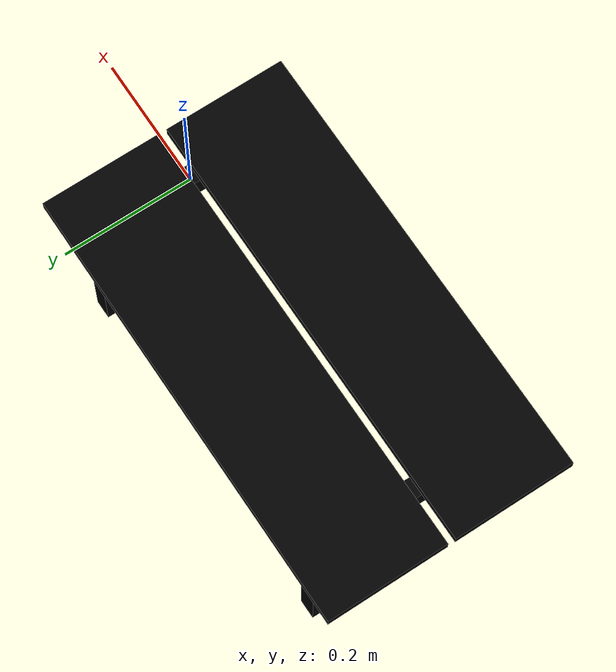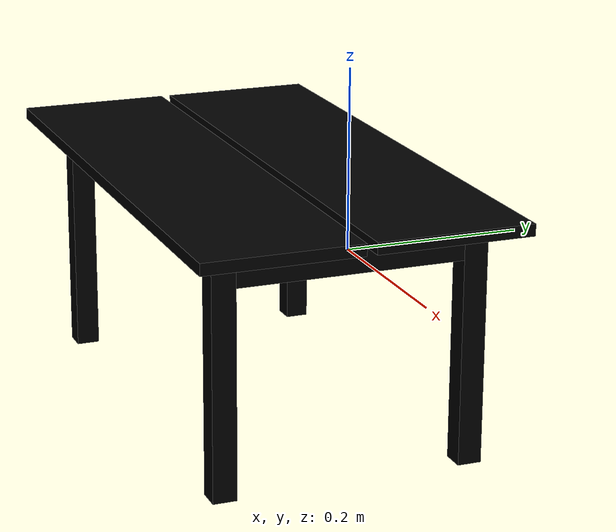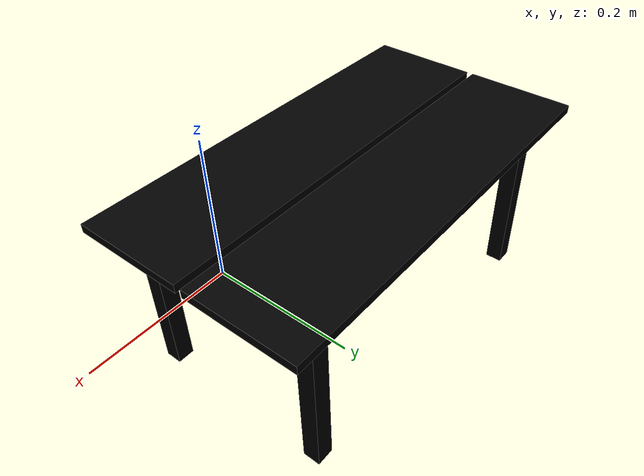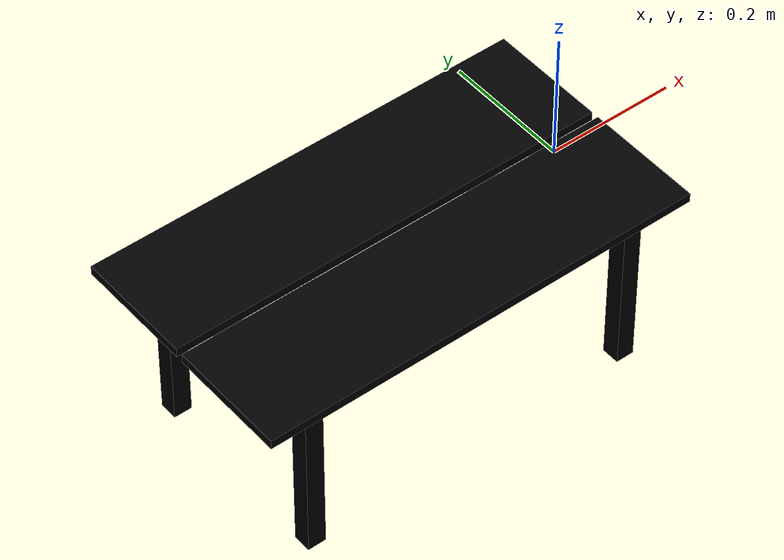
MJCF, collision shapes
<mujoco model="table_liden_0919">
    <custom>
        <numeric data="-0.375211 0.016449 0.023536 0.04548 0.0 0.0 0.998965" name="0_part0_initpos"/>
        <numeric data="0.044406 0.108081 0.025892 -7e-06 -0.999947 0.010278 0.0" name="7_part7_initpos"/>
        <numeric data="0.041843 -0.118284 0.025892 9e-06 -0.999961 0.008831 0.0" name="6_part6_initpos"/>
        <numeric data="0.227318 0.268369 0.014213 0.486318 -0.486318 -0.513317 0.513317" name="5_part5_initpos"/>
        <numeric data="-0.127298 0.385418 0.014109 0.5 0.5 -0.5 -0.5" name="4_part4_initpos"/>
        <numeric data="0.24812 0.379448 0.014109 0.5 0.5 -0.5 -0.5" name="3_part3_initpos"/>
        <numeric data="-0.119076 0.281912 0.014109 0.5 -0.5 -0.5 0.5" name="2_part2_initpos"/>
        <numeric data="0.486105 0.018474 0.023639 0.99994 -0.0 0.0 0.010916" name="1_part1_initpos"/>
    </custom>
    <asset>
        <mesh file="table_liden_0919/0.stl" name="part0" scale="0.000371112 0.000371112 0.000371112"/>
        <mesh file="table_liden_0919/7.stl" name="part7" scale="0.000371112 0.000371112 0.000371112"/>
        <mesh file="table_liden_0919/6.stl" name="part6" scale="0.000371112 0.000371112 0.000371112"/>
        <mesh file="table_liden_0919/5.stl" name="part5" scale="0.000371112 0.000371112 0.000371112"/>
        <mesh file="table_liden_0919/4.stl" name="part4" scale="0.000371112 0.000371112 0.000371112"/>
        <mesh file="table_liden_0919/3.stl" name="part3" scale="0.000371112 0.000371112 0.000371112"/>
        <mesh file="table_liden_0919/2.stl" name="part2" scale="0.000371112 0.000371112 0.000371112"/>
        <mesh file="table_liden_0919/1.stl" name="part1" scale="0.000371112 0.000371112 0.000371112"/>
    </asset>
    <equality>
        <weld active="false" body1="0_part0" body2="6_part6" solimp="1 1 0.5" solref="0.01 0.3"/>
        <weld active="false" body1="0_part0" body2="7_part7" solimp="1 1 0.5" solref="0.01 0.3"/>
        <weld active="false" body1="1_part1" body2="6_part6" solimp="1 1 0.5" solref="0.01 0.3"/>
        <weld active="false" body1="1_part1" body2="7_part7" solimp="1 1 0.5" solref="0.01 0.3"/>
        <weld active="false" body1="0_part0" body2="2_part2" solimp="1 1 0.5" solref="0.01 0.3"/>
        <weld active="false" body1="0_part0" body2="5_part5" solimp="1 1 0.5" solref="0.01 0.3"/>
        <weld active="false" body1="0_part0" body2="4_part4" solimp="1 1 0.5" solref="0.01 0.3"/>
        <weld active="false" body1="0_part0" body2="3_part3" solimp="1 1 0.5" solref="0.01 0.3"/>
        <weld active="false" body1="1_part1" body2="2_part2" solimp="1 1 0.5" solref="0.01 0.3"/>
        <weld active="false" body1="1_part1" body2="5_part5" solimp="1 1 0.5" solref="0.01 0.3"/>
        <weld active="false" body1="1_part1" body2="4_part4" solimp="1 1 0.5" solref="0.01 0.3"/>
        <weld active="false" body1="1_part1" body2="3_part3" solimp="1 1 0.5" solref="0.01 0.3"/>
    </equality>
    <worldbody>
        <body name="0_part0" pos="2.226672e-10 -0.0 -1.4844479999999999e-10" quat="1 0 0 0">
            <geom conaffinity="0" contype="0" density="0" mesh="part0" name="0_part0_mesh" pos="0.0 0.0 0.0"
                  rgba="0.82 0.71 0.55 1" type="mesh"/>
            <site name="0_part0_horizontal_radius_site" pos="2.226672e-10 -0.0 -1.4844479999999999e-10" quat="1 0 0 0"
                  rgba="0 0 0 0" size="0.007422239999999998"/>
            <site name="0_part0_top_site" pos="2.226672e-10 0.0 0.023565616230676798" quat="1 0 0 0" rgba="0 0 0 0"
                  size="0.007422239999999998"/>
            <site name="0_part0_bottom_site" pos="2.226672e-10 0.0 -0.023565616527566398" quat="1 0 0 0" rgba="0 0 0 0"
                  size="0.007422239999999998"/>
            <site name="0_part0_corner_site8" pos="-0.014139381747590397 0.1333477755377712 0.023565616230676798"
                  quat="1 0 0 0" rgba="0 0 0 0" size="0.007422239999999998"/>
            <site name="0_part0_corner_site7" pos="0.014139382192924798 0.1333477755377712 0.023565616230676798"
                  quat="1 0 0 0" rgba="0 0 0 0" size="0.007422239999999998"/>
            <site name="0_part0_corner_site6" pos="0.014139382192924798 -0.1333477755377712 0.023565616230676798"
                  quat="1 0 0 0" rgba="0 0 0 0" size="0.007422239999999998"/>
            <site name="0_part0_corner_site5" pos="-0.014139381747590397 -0.1333477755377712 0.023565616230676798"
                  quat="1 0 0 0" rgba="0 0 0 0" size="0.007422239999999998"/>
            <site name="0_part0_corner_site4" pos="-0.014139381747590397 0.1333477755377712 -0.023565616527566398"
                  quat="1 0 0 0" rgba="0 0 0 0" size="0.007422239999999998"/>
            <site name="0_part0_corner_site3" pos="0.014139382192924798 0.1333477755377712 -0.023565616527566398"
                  quat="1 0 0 0" rgba="0 0 0 0" size="0.007422239999999998"/>
            <site name="0_part0_corner_site2" pos="0.014139382192924798 -0.1333477755377712 -0.023565616527566398"
                  quat="1 0 0 0" rgba="0 0 0 0" size="0.007422239999999998"/>
            <site name="0_part0_corner_site1" pos="-0.014139381747590397 -0.1333477755377712 -0.023565616527566398"
                  quat="1 0 0 0" rgba="0 0 0 0" size="0.007422239999999998"/>
            <site name="centerbar-toppanel,0,180,conn_site2" pos="0.0 -0.0498351089208 0.015289814399999999"
                  quat="1 0 0 0" rgba="0.9019 0.0980 0.2941 0.3" size="0.007422239999999998"/>
            <site name="centerbar-toppanel,0,180,conn_site1" pos="0.0 0.04884527899439999 0.015289814399999999"
                  quat="1 0 0 0" rgba="0.9019 0.0980 0.2941 0.3" size="0.007422239999999998"/>
            <site name="centerbar-leg,0,180,conn_site4" pos="-7.422239999999998e-09 -0.13360032 -0.004082232"
                  quat="0.7071067 0.7071068 0 0" rgba="0.2352 0.7058 0.2941 0.3" size="0.007422239999999998"/>
            <site name="centerbar-leg,0,180,conn_site3" pos="-7.422239999999998e-09 0.13360032 -0.004824456"
                  quat="0.7071067 -0.7071068 0 0" rgba="0.2352 0.7058 0.2941 0.3" size="0.007422239999999998"/>
            <geom density="50" name="noviz_collision_0_part0_0" pos="-1.4844479999999996e-08 0.0 -0.004352056401839999"
                  quat="1 0 0 0" rgba="0 0 0 0" size="0.014139367199999997 0.133347778284 0.01921355930928"
                  solref="0.001 1" type="box"/>
        </body>
        <body name="7_part7" pos="-0.279928666222884 -0.099670247716116 0.0023565566724335994" quat="1 0 0 0">
            <geom conaffinity="0" contype="0" density="0" mesh="part7" name="7_part7_mesh" pos="0.0 0.0 0.0"
                  rgba="0.82 0.71 0.55 1" type="mesh"/>
            <site name="7_part7_horizontal_radius_site" pos="0.0 0.0 0.0" quat="1 0 0 0" rgba="0 0 0 0"
                  size="0.007422239999999998"/>
            <site name="7_part7_top_site" pos="0.0 0.0 0.025922164144867192" quat="1 0 0 0" rgba="0 0 0 0"
                  size="0.007422239999999998"/>
            <site name="7_part7_bottom_site" pos="0.0 0.0 -0.025922164144867192" quat="1 0 0 0" rgba="0 0 0 0"
                  size="0.007422239999999998"/>
            <site name="7_part7_corner_site8" pos="-0.34180971317149433 0.09250134216445918 0.025922164144867192"
                  quat="1 0 0 0" rgba="0 0 0 0" size="0.007422239999999998"/>
            <site name="7_part7_corner_site7" pos="0.34180971317149433 0.09250134216445918 0.025922164144867192"
                  quat="1 0 0 0" rgba="0 0 0 0" size="0.007422239999999998"/>
            <site name="7_part7_corner_site6" pos="0.34180971317149433 -0.09250134216445918 0.025922164144867192"
                  quat="1 0 0 0" rgba="0 0 0 0" size="0.007422239999999998"/>
            <site name="7_part7_corner_site5" pos="-0.34180971317149433 -0.09250134216445918 0.025922164144867192"
                  quat="1 0 0 0" rgba="0 0 0 0" size="0.007422239999999998"/>
            <site name="7_part7_corner_site4" pos="-0.34180971317149433 0.09250134216445918 -0.025922164144867192"
                  quat="1 0 0 0" rgba="0 0 0 0" size="0.007422239999999998"/>
            <site name="7_part7_corner_site3" pos="0.34180971317149433 0.09250134216445918 -0.025922164144867192"
                  quat="1 0 0 0" rgba="0 0 0 0" size="0.007422239999999998"/>
            <site name="7_part7_corner_site2" pos="0.34180971317149433 -0.09250134216445918 -0.025922164144867192"
                  quat="1 0 0 0" rgba="0 0 0 0" size="0.007422239999999998"/>
            <site name="7_part7_corner_site1" pos="-0.34180971317149433 -0.09250134216445918 -0.025922164144867192"
                  quat="1 0 0 0" rgba="0 0 0 0" size="0.007422239999999998"/>
            <site name="toppanel-centerbar,0,conn_site3" pos="-0.2548437237359999 0.0498351089208 0.012933256911119998"
                  quat="1 0 0 0" rgba="0.9019 0.0980 0.2941 0.3" size="0.007422239999999998"/>
            <site name="toppanel-centerbar,0,conn_site2" pos="0.2799286682639999 0.0498351089208 0.012933256911119998"
                  quat="1 0 0 0" rgba="0.9019 0.0980 0.2941 0.3" size="0.007422239999999998"/>
            <geom density="50" name="noviz_collision_7_part7_0"
                  pos="0.00356577027408 -0.0005299961805599999 0.018871048911119993" quat="1 0 0 0" rgba="0 0 0 0"
                  size="0.34537545702239997 0.09277799999999999 0.0070511279999999985" solref="0.001 1" type="box"/>
            <geom density="50" name="noviz_collision_7_part7_"
                  pos="0.014212476263999997 -0.019456708180559997 -0.007181013488879997" quat="1 0 0 0" rgba="0 0 0 0"
                  size="0.24957281999999997 0.014287811999999999 0.0185556" solref="0.001 1" type="box"/>
        </body>
        <body name="6_part6" pos="-0.279928666222884 0.0976905749486184 0.0023565566724335994" quat="1 0 0 0">
            <geom conaffinity="0" contype="0" density="0" mesh="part6" name="6_part6_mesh" pos="0.0 0.0 0.0"
                  rgba="0.82 0.71 0.55 1" type="mesh"/>
            <site name="6_part6_horizontal_radius_site" pos="0.0 0.0 0.0" quat="1 0 0 0" rgba="0 0 0 0"
                  size="0.007422239999999998"/>
            <site name="6_part6_top_site" pos="0.0 0.0 0.025922164144867192" quat="1 0 0 0" rgba="0 0 0 0"
                  size="0.007422239999999998"/>
            <site name="6_part6_bottom_site" pos="0.0 0.0 -0.025922164144867192" quat="1 0 0 0" rgba="0 0 0 0"
                  size="0.007422239999999998"/>
            <site name="6_part6_corner_site8" pos="-0.34180971317149433 0.09250134216445918 0.025922164144867192"
                  quat="1 0 0 0" rgba="0 0 0 0" size="0.007422239999999998"/>
            <site name="6_part6_corner_site7" pos="0.34180971317149433 0.09250134216445918 0.025922164144867192"
                  quat="1 0 0 0" rgba="0 0 0 0" size="0.007422239999999998"/>
            <site name="6_part6_corner_site6" pos="0.34180971317149433 -0.09250134216445918 0.025922164144867192"
                  quat="1 0 0 0" rgba="0 0 0 0" size="0.007422239999999998"/>
            <site name="6_part6_corner_site5" pos="-0.34180971317149433 -0.09250134216445918 0.025922164144867192"
                  quat="1 0 0 0" rgba="0 0 0 0" size="0.007422239999999998"/>
            <site name="6_part6_corner_site4" pos="-0.34180971317149433 0.09250134216445918 -0.025922164144867192"
                  quat="1 0 0 0" rgba="0 0 0 0" size="0.007422239999999998"/>
            <site name="6_part6_corner_site3" pos="0.34180971317149433 0.09250134216445918 -0.025922164144867192"
                  quat="1 0 0 0" rgba="0 0 0 0" size="0.007422239999999998"/>
            <site name="6_part6_corner_site2" pos="0.34180971317149433 -0.09250134216445918 -0.025922164144867192"
                  quat="1 0 0 0" rgba="0 0 0 0" size="0.007422239999999998"/>
            <site name="6_part6_corner_site1" pos="-0.34180971317149433 -0.09250134216445918 -0.025922164144867192"
                  quat="1 0 0 0" rgba="0 0 0 0" size="0.007422239999999998"/>
            <site name="toppanel-centerbar,0,conn_site4"
                  pos="-0.2548437237359999 -0.04884527899439999 0.012933256911119998" quat="1 0 0 0"
                  rgba="0.9019 0.0980 0.2941 0.3" size="0.007422239999999998"/>
            <site name="toppanel-centerbar,0,conn_site1"
                  pos="0.2799286682639999 -0.04884527899439999 0.012933256911119998" quat="1 0 0 0"
                  rgba="0.9019 0.0980 0.2941 0.3" size="0.007422239999999998"/>
            <geom density="50" name="noviz_collision_6_part6_0"
                  pos="0.003630165628319999 -0.00045923625552000003 0.018871048911119993" quat="1 0 0 0" rgba="0 0 0 0"
                  size="0.34543984495439994 0.09278738913359999 0.0070511279999999985" solref="0.001 1" type="box"/>
            <geom density="50" name="noviz_collision_6_part6_1"
                  pos="0.014212476263999997 0.021584816544479996 -0.007181013488879997" quat="1 0 0 0" rgba="0 0 0 0"
                  size="0.24957281999999997 0.014287811999999999 0.0185556" solref="0.001 1" type="box"/>
        </body>
        <body name="5_part5" pos="-1.4547590399999999e-08 0.14748714273777117 -0.12725430932756637" quat="1 0 0 0">
            <geom conaffinity="0" contype="0" density="0" mesh="part5" name="5_part5_mesh" pos="0.0 0.0 0.0"
                  rgba="0.82 0.71 0.55 1" type="mesh"/>
            <site name="5_part5_horizontal_radius_site" pos="-0.0 0.0 0.0" quat="1 0 0 0" rgba="0 0 0 0"
                  size="0.007422239999999998"/>
            <site name="5_part5_top_site" pos="0.0 0.0 0.14139367199999997" quat="1 0 0 0" rgba="0 0 0 0"
                  size="0.007422239999999998"/>
            <site name="5_part5_bottom_site" pos="0.0 0.0 -0.14139367199999997" quat="1 0 0 0" rgba="0 0 0 0"
                  size="0.007422239999999998"/>
            <site name="5_part5_corner_site8" pos="-0.014139367199999997 0.014139367199999997 0.14139367199999997"
                  quat="1 0 0 0" rgba="0 0 0 0" size="0.007422239999999998"/>
            <site name="5_part5_corner_site7" pos="0.014139367199999997 0.014139367199999997 0.14139367199999997"
                  quat="1 0 0 0" rgba="0 0 0 0" size="0.007422239999999998"/>
            <site name="5_part5_corner_site6" pos="0.014139367199999997 -0.014139367199999997 0.14139367199999997"
                  quat="1 0 0 0" rgba="0 0 0 0" size="0.007422239999999998"/>
            <site name="5_part5_corner_site5" pos="-0.014139367199999997 -0.014139367199999997 0.14139367199999997"
                  quat="1 0 0 0" rgba="0 0 0 0" size="0.007422239999999998"/>
            <site name="5_part5_corner_site4" pos="-0.014139367199999997 0.014139367199999997 -0.14139367199999997"
                  quat="1 0 0 0" rgba="0 0 0 0" size="0.007422239999999998"/>
            <site name="5_part5_corner_site3" pos="0.014139367199999997 0.014139367199999997 -0.14139367199999997"
                  quat="1 0 0 0" rgba="0 0 0 0" size="0.007422239999999998"/>
            <site name="5_part5_corner_site2" pos="0.014139367199999997 -0.014139367199999997 -0.14139367199999997"
                  quat="1 0 0 0" rgba="0 0 0 0" size="0.007422239999999998"/>
            <site name="5_part5_corner_site1" pos="-0.014139367199999997 -0.014139367199999997 -0.14139367199999997"
                  quat="1 0 0 0" rgba="0 0 0 0" size="0.007422239999999998"/>
            <site name="leg-centerbar,0,180,conn_site1"
                  pos="7.422239999999998e-09 -0.01388682177288 0.12242984879999996" quat="0.7071067 -0.7071068 0 0"
                  rgba="0.2352 0.7058 0.2941 0.3" size="0.007422239999999998"/>
            <geom density="50" name="noviz_collision_5_part5_0" pos="0.0 0.0 0.0" quat="1 0 0 0" rgba="0 0 0 0"
                  size="0.014139367199999997 0.014139370911119997 0.14139367199999997" solref="0.001 1" type="box"/>
        </body>
        <body name="4_part4" pos="-1.4547590399999999e-08 -0.14748714273777117 -0.12725430932756637" quat="1 0 0 0">
            <geom conaffinity="0" contype="0" density="0" mesh="part4" name="4_part4_mesh" pos="0.0 0.0 0.0"
                  rgba="0.82 0.71 0.55 1" type="mesh"/>
            <site name="4_part4_horizontal_radius_site" pos="-0.0 0.0 0.0" quat="1 0 0 0" rgba="0 0 0 0"
                  size="0.007422239999999998"/>
            <site name="4_part4_top_site" pos="0.0 0.0 0.14139367199999997" quat="1 0 0 0" rgba="0 0 0 0"
                  size="0.007422239999999998"/>
            <site name="4_part4_bottom_site" pos="0.0 0.0 -0.14139367199999997" quat="1 0 0 0" rgba="0 0 0 0"
                  size="0.007422239999999998"/>
            <site name="4_part4_corner_site8" pos="-0.014139367199999997 0.014139367199999997 0.14139367199999997"
                  quat="1 0 0 0" rgba="0 0 0 0" size="0.007422239999999998"/>
            <site name="4_part4_corner_site7" pos="0.014139367199999997 0.014139367199999997 0.14139367199999997"
                  quat="1 0 0 0" rgba="0 0 0 0" size="0.007422239999999998"/>
            <site name="4_part4_corner_site6" pos="0.014139367199999997 -0.014139367199999997 0.14139367199999997"
                  quat="1 0 0 0" rgba="0 0 0 0" size="0.007422239999999998"/>
            <site name="4_part4_corner_site5" pos="-0.014139367199999997 -0.014139367199999997 0.14139367199999997"
                  quat="1 0 0 0" rgba="0 0 0 0" size="0.007422239999999998"/>
            <site name="4_part4_corner_site4" pos="-0.014139367199999997 0.014139367199999997 -0.14139367199999997"
                  quat="1 0 0 0" rgba="0 0 0 0" size="0.007422239999999998"/>
            <site name="4_part4_corner_site3" pos="0.014139367199999997 0.014139367199999997 -0.14139367199999997"
                  quat="1 0 0 0" rgba="0 0 0 0" size="0.007422239999999998"/>
            <site name="4_part4_corner_site2" pos="0.014139367199999997 -0.014139367199999997 -0.14139367199999997"
                  quat="1 0 0 0" rgba="0 0 0 0" size="0.007422239999999998"/>
            <site name="4_part4_corner_site1" pos="-0.014139367199999997 -0.014139367199999997 -0.14139367199999997"
                  quat="1 0 0 0" rgba="0 0 0 0" size="0.007422239999999998"/>
            <site name="leg-centerbar,0,180,conn_site2" pos="7.422239999999998e-09 0.01388682177288 0.12317207279999998"
                  quat="0.7071067 0.7071068 0 0" rgba="0.2352 0.7058 0.2941 0.3" size="0.007422239999999998"/>
            <geom density="50" name="noviz_collision_4_part4_0" pos="0.0 0.0 0.0" quat="1 0 0 0" rgba="0 0 0 0"
                  size="0.014139367199999997 0.014139370911119997 0.14139367199999997" solref="0.001 1" type="box"/>
        </body>
        <body name="3_part3" pos="-0.5315785328785008 -0.14748714273777117 -0.12725430932756637" quat="1 0 0 0">
            <geom conaffinity="0" contype="0" density="0" mesh="part3" name="3_part3_mesh" pos="0.0 0.0 0.0"
                  rgba="0.82 0.71 0.55 1" type="mesh"/>
            <site name="3_part3_horizontal_radius_site" pos="0.0 0.0 0.0" quat="1 0 0 0" rgba="0 0 0 0"
                  size="0.007422239999999998"/>
            <site name="3_part3_top_site" pos="0.0 0.0 0.14139367199999997" quat="1 0 0 0" rgba="0 0 0 0"
                  size="0.007422239999999998"/>
            <site name="3_part3_bottom_site" pos="0.0 0.0 -0.14139367199999997" quat="1 0 0 0" rgba="0 0 0 0"
                  size="0.007422239999999998"/>
            <site name="3_part3_corner_site8" pos="-0.014139367199999997 0.014139367199999997 0.14139367199999997"
                  quat="1 0 0 0" rgba="0 0 0 0" size="0.007422239999999998"/>
            <site name="3_part3_corner_site7" pos="0.014139367199999997 0.014139367199999997 0.14139367199999997"
                  quat="1 0 0 0" rgba="0 0 0 0" size="0.007422239999999998"/>
            <site name="3_part3_corner_site6" pos="0.014139367199999997 -0.014139367199999997 0.14139367199999997"
                  quat="1 0 0 0" rgba="0 0 0 0" size="0.007422239999999998"/>
            <site name="3_part3_corner_site5" pos="-0.014139367199999997 -0.014139367199999997 0.14139367199999997"
                  quat="1 0 0 0" rgba="0 0 0 0" size="0.007422239999999998"/>
            <site name="3_part3_corner_site4" pos="-0.014139367199999997 0.014139367199999997 -0.14139367199999997"
                  quat="1 0 0 0" rgba="0 0 0 0" size="0.007422239999999998"/>
            <site name="3_part3_corner_site3" pos="0.014139367199999997 0.014139367199999997 -0.14139367199999997"
                  quat="1 0 0 0" rgba="0 0 0 0" size="0.007422239999999998"/>
            <site name="3_part3_corner_site2" pos="0.014139367199999997 -0.014139367199999997 -0.14139367199999997"
                  quat="1 0 0 0" rgba="0 0 0 0" size="0.007422239999999998"/>
            <site name="3_part3_corner_site1" pos="-0.014139367199999997 -0.014139367199999997 -0.14139367199999997"
                  quat="1 0 0 0" rgba="0 0 0 0" size="0.007422239999999998"/>
            <site name="leg-centerbar,0,180,conn_site3" pos="0.0 0.014257933772879998 0.12131651279999997"
                  quat="0.7071067 0.7071068 0 0" rgba="0.2352 0.7058 0.2941 0.3" size="0.007422239999999998"/>
            <geom density="50" name="noviz_collision_3_part3_0" pos="0.0 0.0 0.0" quat="1 0 0 0" rgba="0 0 0 0"
                  size="0.01413935977776 0.014139370911119997 0.14139367199999997" solref="0.001 1" type="box"/>
        </body>
        <body name="2_part2" pos="-0.5315785328785008 0.14748714273777117 -0.12725430932756637" quat="1 0 0 0">
            <geom conaffinity="0" contype="0" density="0" mesh="part2" name="2_part2_mesh" pos="0.0 0.0 0.0"
                  rgba="0.82 0.71 0.55 1" type="mesh"/>
            <site name="2_part2_horizontal_radius_site" pos="0.0 0.0 0.0" quat="1 0 0 0" rgba="0 0 0 0"
                  size="0.007422239999999998"/>
            <site name="2_part2_top_site" pos="0.0 0.0 0.14139367199999997" quat="1 0 0 0" rgba="0 0 0 0"
                  size="0.007422239999999998"/>
            <site name="2_part2_bottom_site" pos="0.0 0.0 -0.14139367199999997" quat="1 0 0 0" rgba="0 0 0 0"
                  size="0.007422239999999998"/>
            <site name="2_part2_corner_site8" pos="-0.014139367199999997 0.014139367199999997 0.14139367199999997"
                  quat="1 0 0 0" rgba="0 0 0 0" size="0.007422239999999998"/>
            <site name="2_part2_corner_site7" pos="0.014139367199999997 0.014139367199999997 0.14139367199999997"
                  quat="1 0 0 0" rgba="0 0 0 0" size="0.007422239999999998"/>
            <site name="2_part2_corner_site6" pos="0.014139367199999997 -0.014139367199999997 0.14139367199999997"
                  quat="1 0 0 0" rgba="0 0 0 0" size="0.007422239999999998"/>
            <site name="2_part2_corner_site5" pos="-0.014139367199999997 -0.014139367199999997 0.14139367199999997"
                  quat="1 0 0 0" rgba="0 0 0 0" size="0.007422239999999998"/>
            <site name="2_part2_corner_site4" pos="-0.014139367199999997 0.014139367199999997 -0.14139367199999997"
                  quat="1 0 0 0" rgba="0 0 0 0" size="0.007422239999999998"/>
            <site name="2_part2_corner_site3" pos="0.014139367199999997 0.014139367199999997 -0.14139367199999997"
                  quat="1 0 0 0" rgba="0 0 0 0" size="0.007422239999999998"/>
            <site name="2_part2_corner_site2" pos="0.014139367199999997 -0.014139367199999997 -0.14139367199999997"
                  quat="1 0 0 0" rgba="0 0 0 0" size="0.007422239999999998"/>
            <site name="2_part2_corner_site1" pos="-0.014139367199999997 -0.014139367199999997 -0.14139367199999997"
                  quat="1 0 0 0" rgba="0 0 0 0" size="0.007422239999999998"/>
            <site name="leg-centerbar,0,180,conn_site4" pos="0.0 -0.01388682177288 0.12168762479999996"
                  quat="0.7071067 -0.7071068 0 0" rgba="0.2352 0.7058 0.2941 0.3" size="0.007422239999999998"/>
            <geom density="50" name="noviz_collision_2_part2_0" pos="0.0 0.0 0.0" quat="1 0 0 0" rgba="0 0 0 0"
                  size="0.01413935977776 0.014139370911119997 0.14139367199999997" solref="0.001 1" type="box"/>
        </body>
        <body name="1_part1" pos="-0.5315785491703177 -0.0 -1.4844479999999999e-10" quat="1 0 0 0">
            <geom conaffinity="0" contype="0" density="0" mesh="part1" name="1_part1_mesh" pos="0.0 0.0 0.0"
                  rgba="0.82 0.71 0.55 1" type="mesh"/>
            <site name="1_part1_horizontal_radius_site" pos="0.0 -0.0 -1.4844479999999999e-10" quat="1 0 0 0"
                  rgba="0 0 0 0" size="0.007422239999999998"/>
            <site name="1_part1_top_site" pos="0.0 0.0 0.023565616230676798" quat="1 0 0 0" rgba="0 0 0 0"
                  size="0.007422239999999998"/>
            <site name="1_part1_bottom_site" pos="0.0 0.0 -0.023565616527566398" quat="1 0 0 0" rgba="0 0 0 0"
                  size="0.007422239999999998"/>
            <site name="1_part1_corner_site8" pos="-0.014139403457642398 0.1333477755377712 0.023565616230676798"
                  quat="1 0 0 0" rgba="0 0 0 0" size="0.007422239999999998"/>
            <site name="1_part1_corner_site7" pos="0.014139403457642398 0.1333477755377712 0.023565616230676798"
                  quat="1 0 0 0" rgba="0 0 0 0" size="0.007422239999999998"/>
            <site name="1_part1_corner_site6" pos="0.014139403457642398 -0.1333477755377712 0.023565616230676798"
                  quat="1 0 0 0" rgba="0 0 0 0" size="0.007422239999999998"/>
            <site name="1_part1_corner_site5" pos="-0.014139403457642398 -0.1333477755377712 0.023565616230676798"
                  quat="1 0 0 0" rgba="0 0 0 0" size="0.007422239999999998"/>
            <site name="1_part1_corner_site4" pos="-0.014139403457642398 0.1333477755377712 -0.023565616527566398"
                  quat="1 0 0 0" rgba="0 0 0 0" size="0.007422239999999998"/>
            <site name="1_part1_corner_site3" pos="0.014139403457642398 0.1333477755377712 -0.023565616527566398"
                  quat="1 0 0 0" rgba="0 0 0 0" size="0.007422239999999998"/>
            <site name="1_part1_corner_site2" pos="0.014139403457642398 -0.1333477755377712 -0.023565616527566398"
                  quat="1 0 0 0" rgba="0 0 0 0" size="0.007422239999999998"/>
            <site name="1_part1_corner_site1" pos="-0.014139403457642398 -0.1333477755377712 -0.023565616527566398"
                  quat="1 0 0 0" rgba="0 0 0 0" size="0.007422239999999998"/>
            <site name="centerbar-leg,0,180,conn_site2" pos="0.0 0.13360032 -0.005566679999999999"
                  quat="0.7071067 -0.7071068 0 0" rgba="0.2352 0.7058 0.2941 0.3" size="0.007422239999999998"/>
            <site name="centerbar-leg,0,180,conn_site1" pos="0.0 -0.13322920799999996 -0.005937792"
                  quat="0.7071067 0.7071068 0 0" rgba="0.2352 0.7058 0.2941 0.3" size="0.007422239999999998"/>
            <site name="centerbar-toppanel,0,180,conn_site4"
                  pos="-0.003193864094399999 0.04884527899439999 0.015289814399999999" quat="1 0 0 0"
                  rgba="0.9019 0.0980 0.2941 0.3" size="0.007422239999999998"/>
            <site name="centerbar-toppanel,0,180,conn_site3"
                  pos="-0.003193864094399999 -0.0498351089208 0.015289814399999999" quat="1 0 0 0"
                  rgba="0.9019 0.0980 0.2941 0.3" size="0.007422239999999998"/>
            <geom density="50" name="noviz_collision_1_part1_0" pos="0.0 0.0 -0.004352056401839999" quat="1 0 0 0"
                  rgba="0 0 0 0" size="0.014139404311199996 0.133347778284 0.01921355930928" solref="0.001 1"
                  type="box"/>
        </body>
    </worldbody>
    <actuator/>
    <sensor/>
    <contact/>
    <default/>
</mujoco>
